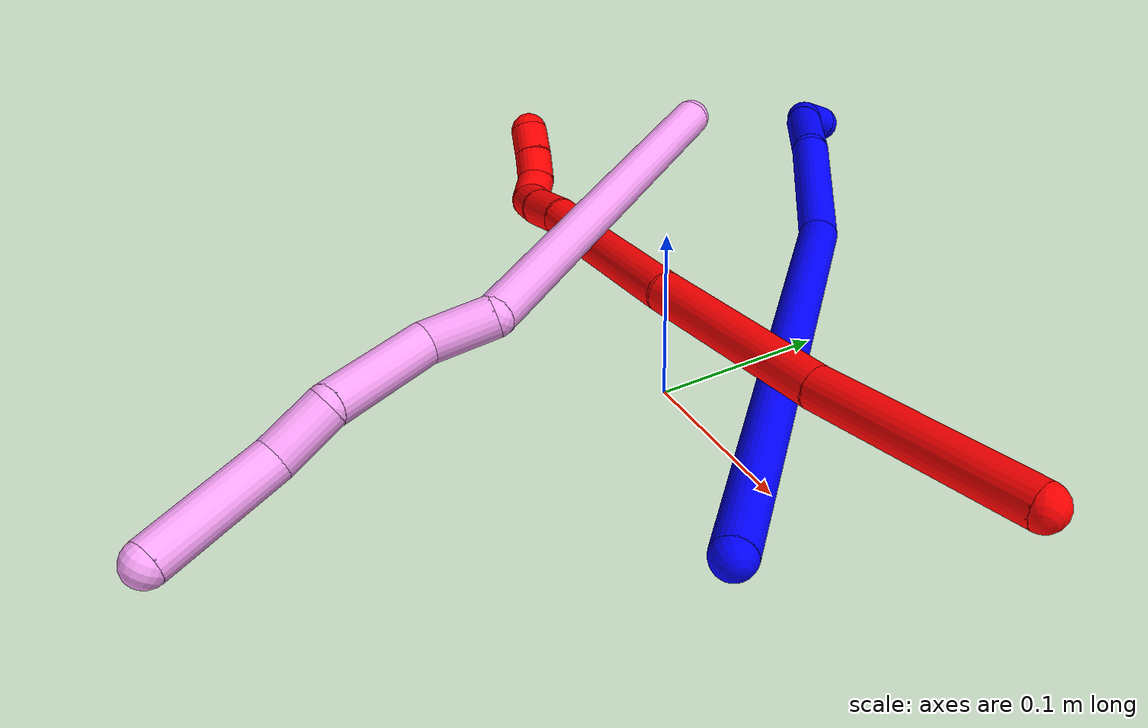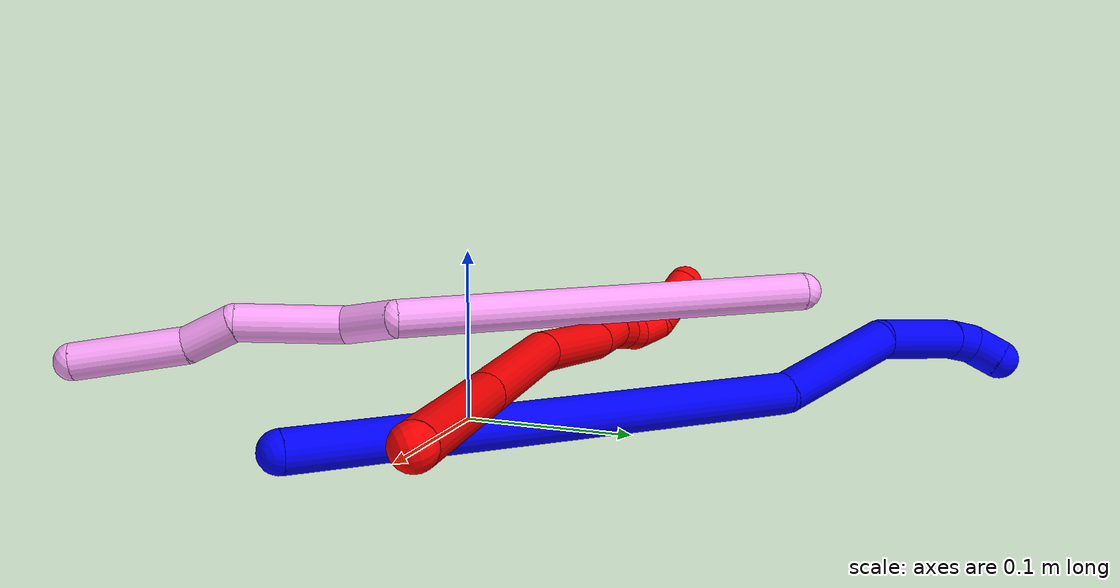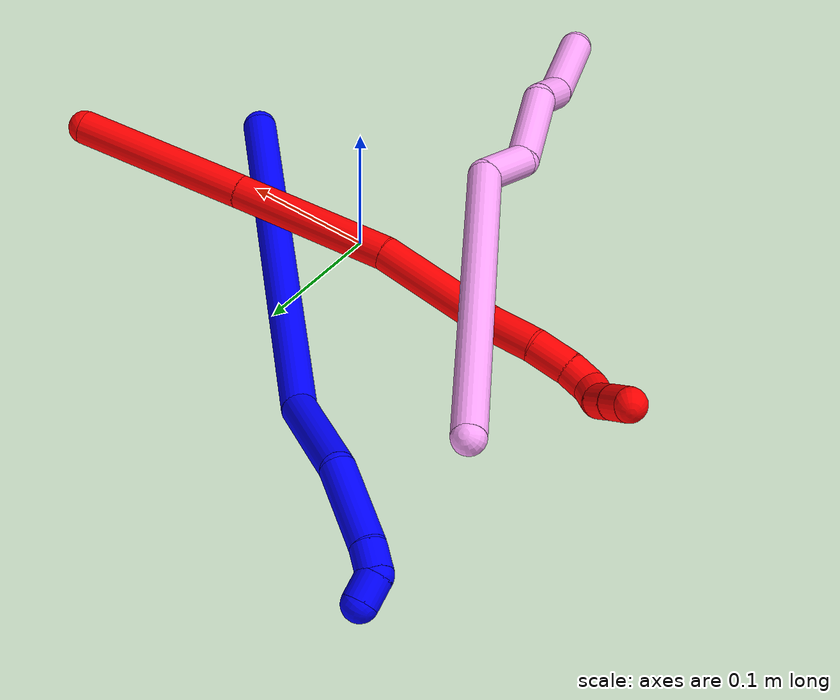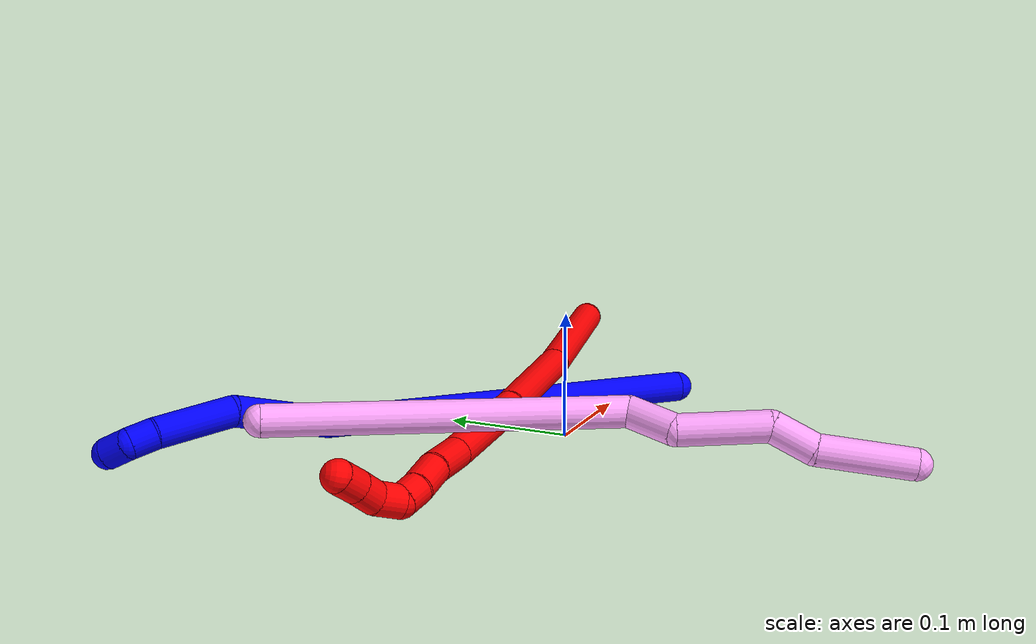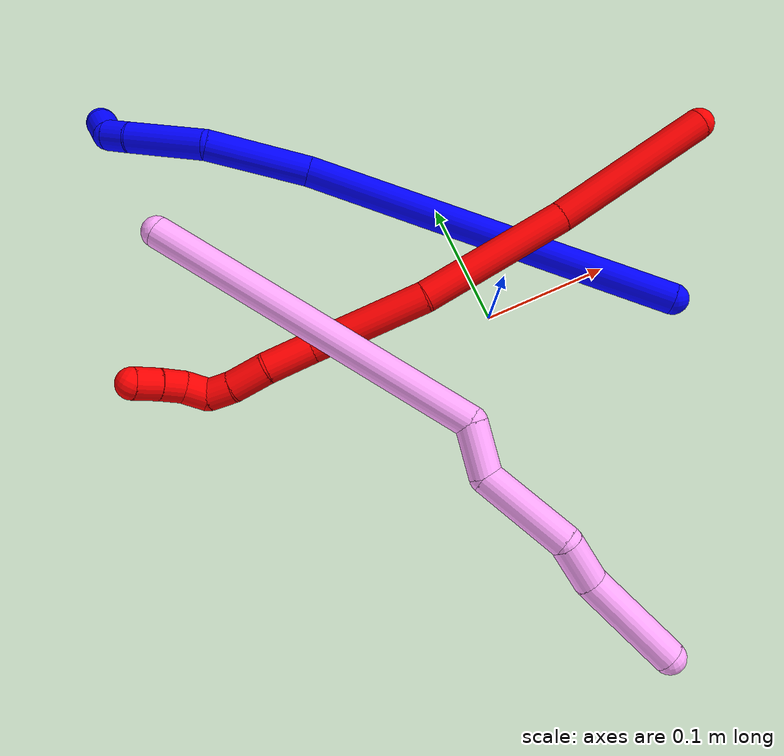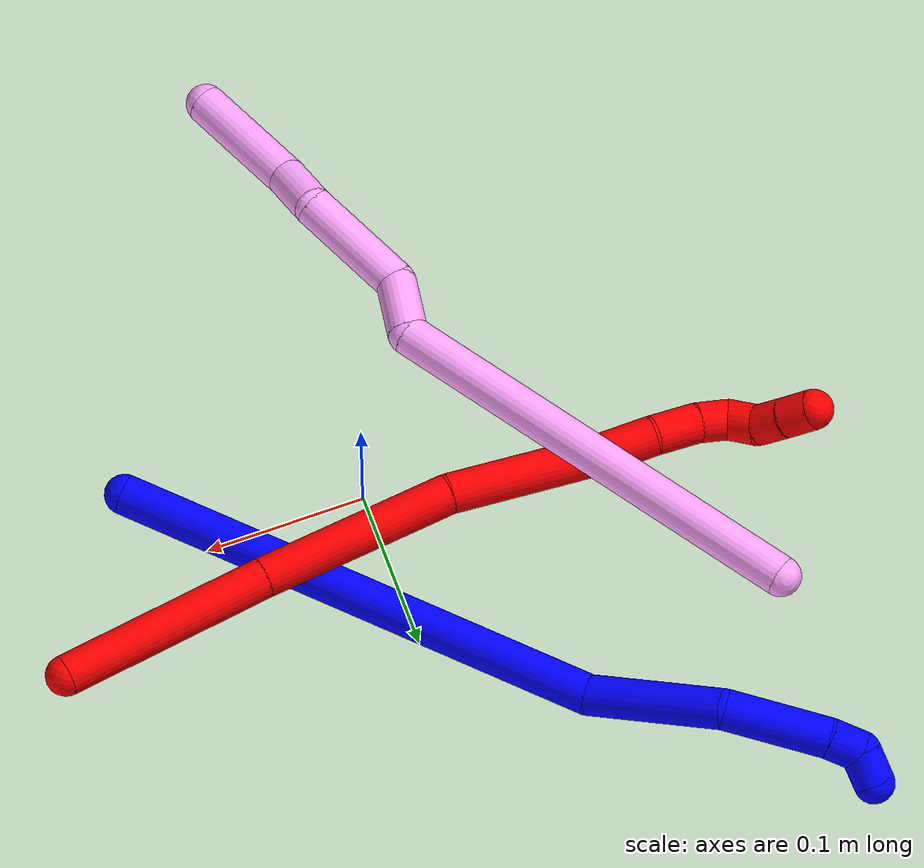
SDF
<sdf version="1.7">
 <world name="default">
  <model name="photoneo_s_sensor">
   <static>1</static>
   <pose>0 0 2 1.57079 1.57079 3.14159</pose>
   <link name="link">
    <inertial><mass>0.1</mass></inertial>
    <sensor name="sensor" type="depth">
     <update_rate>30</update_rate>
     <camera>
      <horizontal_fov>1.22</horizontal_fov>
      <image><width>1920</width><height>1200</height><format>B8G8R8</format></image>
      <clip><near>0.1</near><far>4</far></clip>
      <depth_camera><output>points</output></depth_camera>
     </camera>
     <plugin name="camera_plugin" filename="libgazebo_ros_depth_camera.so">
      <baseline>0.2</baseline>
      <alwaysOn>1</alwaysOn>
      <updateRate>0.0</updateRate>
      <cameraName>camera_ir</cameraName>
      <imageTopicName>/camera/color/image_raw</imageTopicName>
      <cameraInfoTopicName>/camera/color/camera_info</cameraInfoTopicName>
      <depthImageTopicName>/camera/depth/image_raw</depthImageTopicName>
      <depthImageCameraInfoTopicName>/camera/depth/camera_info</depthImageCameraInfoTopicName>
      <pointCloudTopicName>/camera/depth/points</pointCloudTopicName>
      <frameName>fr_optical</frameName>
      <pointCloudCutoff>0.1</pointCloudCutoff>
      <pointCloudCutoffMax>2.0</pointCloudCutoffMax>
      <distortionK1>0</distortionK1>
      <distortionK2>0</distortionK2>
      <distortionK3>0</distortionK3>
      <distortionT1>0</distortionT1>
      <distortionT2>0</distortionT2>
      <CxPrime>0</CxPrime>
      <Cx>0</Cx>
      <Cy>0</Cy>
      <focalLength>0</focalLength>
      <hackBaseline>0</hackBaseline>
     </plugin>
    </sensor>
   </link>
  </model>
  <model name="bin">
   <static>1</static>
   <link name="bottom">
    <collision name="collision-bottom">
     <pose>0 0 -0.01 0 -0 0</pose>
     <geometry><box><size>0.8 0.6 0.02</size></box></geometry>
     <surface>
      <friction><ode><mu>100</mu><mu2>100</mu2></ode></friction>
      <contact><collide_bitmask>65535</collide_bitmask></contact>
     </surface>
    </collision>
   </link>
   <link name="west_wall">
    <collision name="collision-west_wall">
     <pose>-0.41 0 0.1 0 -0 0</pose>
     <geometry><box><size>0.02 0.6 0.2</size></box></geometry>
     <surface>
      <friction><ode><mu>100</mu><mu2>100</mu2></ode></friction>
      <contact><collide_bitmask>65535</collide_bitmask></contact>
     </surface>
    </collision>
   </link>
   <link name="east_wall">
    <collision name="collision-east_wall">
     <pose>0.41 0 0.1 0 -0 0</pose>
     <geometry><box><size>0.02 0.6 0.2</size></box></geometry>
     <surface>
      <friction><ode><mu>100</mu><mu2>100</mu2></ode></friction>
      <contact><collide_bitmask>65535</collide_bitmask></contact>
     </surface>
    </collision>
   </link>
   <link name="south_wall">
    <collision name="collision-south_wall">
     <pose>0 -0.31 0.1 0 -0 0</pose>
     <geometry><box><size>0.8 0.02 0.2</size></box></geometry>
     <surface>
      <friction><ode><mu>100</mu><mu2>100</mu2></ode></friction>
      <contact><collide_bitmask>65535</collide_bitmask></contact>
     </surface>
    </collision>
   </link>
   <link name="north_wall">
    <collision name="collision-north_wall">
     <pose>0 0.31 0.1 0 -0 0</pose>
     <geometry><box><size>0.8 0.02 0.2</size></box></geometry>
     <surface>
      <friction><ode><mu>100</mu><mu2>100</mu2></ode></friction>
      <contact><collide_bitmask>65535</collide_bitmask></contact>
     </surface>
    </collision>
   </link>
  </model>
  <model name="1">
   <static>0</static>
   <link name="1">
    <collision name="collision-cylinder-e_1_1_4">
     <pose>-0.056234 0.048711 0.135348 -0.345466 -0.372665 0.065759</pose>
     <geometry><cylinder><radius>0.0125</radius><length>0.308895</length></cylinder></geometry>
     <surface>
      <friction><ode><mu>1.16</mu><mu2>1.16</mu2><slip1>0</slip1><slip2>0</slip2></ode></friction>
      <contact><ode><kp>1e+06</kp><kd>1</kd><max_vel>0</max_vel><min_depth>0.001</min_depth></ode></contact>
     </surface>
    </collision>
    <visual name="visual-cylinder-e_1_1_4">
     <pose>-0.056234 0.048711 0.135348 -0.345466 -0.372665 0.065759</pose>
     <geometry><cylinder><radius>0.0125</radius><length>0.308895</length></cylinder></geometry>
     <material><ambient>0 0 1 1</ambient></material>
    </visual>
    <collision name="collision-cylinder-e_2_4_5">
     <pose>-0.113896 0.113341 0.310005 -0.384758 -0.033646 0.006554</pose>
     <geometry><cylinder><radius>0.0125</radius><length>0.084868</length></cylinder></geometry>
     <surface>
      <friction><ode><mu>1.16</mu><mu2>1.16</mu2><slip1>0</slip1><slip2>0</slip2></ode></friction>
      <contact><ode><kp>1e+06</kp><kd>1</kd><max_vel>0</max_vel><min_depth>0.001</min_depth></ode></contact>
     </surface>
    </collision>
    <visual name="visual-cylinder-e_2_4_5">
     <pose>-0.113896 0.113341 0.310005 -0.384758 -0.033646 0.006554</pose>
     <geometry><cylinder><radius>0.0125</radius><length>0.084868</length></cylinder></geometry>
     <material><ambient>0 0 1 1</ambient></material>
    </visual>
    <collision name="collision-cylinder-e_3_5_6">
     <pose>-0.125329 0.132647 0.379857 -0.110473 -0.314776 0.017549</pose>
     <geometry><cylinder><radius>0.0125</radius><length>0.064636</length></cylinder></geometry>
     <surface>
      <friction><ode><mu>1.16</mu><mu2>1.16</mu2><slip1>0</slip1><slip2>0</slip2></ode></friction>
      <contact><ode><kp>1e+06</kp><kd>1</kd><max_vel>0</max_vel><min_depth>0.001</min_depth></ode></contact>
     </surface>
    </collision>
    <visual name="visual-cylinder-e_3_5_6">
     <pose>-0.125329 0.132647 0.379857 -0.110473 -0.314776 0.017549</pose>
     <geometry><cylinder><radius>0.0125</radius><length>0.064636</length></cylinder></geometry>
     <material><ambient>0 0 1 1</ambient></material>
    </visual>
    <collision name="collision-cylinder-e_4_6_7">
     <pose>-0.139977 0.136561 0.419648 -0.056815 -0.464591 0.013444</pose>
     <geometry><cylinder><radius>0.0125</radius><length>0.020723</length></cylinder></geometry>
     <surface>
      <friction><ode><mu>1.16</mu><mu2>1.16</mu2><slip1>0</slip1><slip2>0</slip2></ode></friction>
      <contact><ode><kp>1e+06</kp><kd>1</kd><max_vel>0</max_vel><min_depth>0.001</min_depth></ode></contact>
     </surface>
    </collision>
    <visual name="visual-cylinder-e_4_6_7">
     <pose>-0.139977 0.136561 0.419648 -0.056815 -0.464591 0.013444</pose>
     <geometry><cylinder><radius>0.0125</radius><length>0.020723</length></cylinder></geometry>
     <material><ambient>0 0 1 1</ambient></material>
    </visual>
    <collision name="collision-cylinder-e_5_7_2">
     <pose>-0.154194 0.13921 0.432473 -0.535761 -1.1609 0.356196</pose>
     <geometry><cylinder><radius>0.0125</radius><length>0.020878</length></cylinder></geometry>
     <surface>
      <friction><ode><mu>1.16</mu><mu2>1.16</mu2><slip1>0</slip1><slip2>0</slip2></ode></friction>
      <contact><ode><kp>1e+06</kp><kd>1</kd><max_vel>0</max_vel><min_depth>0.001</min_depth></ode></contact>
     </surface>
    </collision>
    <visual name="visual-cylinder-e_5_7_2">
     <pose>-0.154194 0.13921 0.432473 -0.535761 -1.1609 0.356196</pose>
     <geometry><cylinder><radius>0.0125</radius><length>0.020878</length></cylinder></geometry>
     <material><ambient>0 0 1 1</ambient></material>
    </visual>
    <collision name="collision-sphere-2">
     <pose>-0.163768 0.141334 0.43605 0 -0 0</pose>
     <geometry><sphere><radius>0.0125</radius></sphere></geometry>
     <surface>
      <friction><ode><mu>1.16</mu><mu2>1.16</mu2><slip1>0</slip1><slip2>0</slip2></ode></friction>
      <contact><ode><kp>1e+06</kp><kd>1</kd><max_vel>0</max_vel><min_depth>0.001</min_depth></ode></contact>
     </surface>
    </collision>
    <visual name="visual-sphere-2">
     <pose>-0.163768 0.141334 0.43605 0 -0 0</pose>
     <geometry><sphere><radius>0.0125</radius></sphere></geometry>
     <material><ambient>0 0 1 1</ambient></material>
    </visual>
    <collision name="collision-sphere-7">
     <pose>-0.14462 0.137087 0.428896 0 -0 0</pose>
     <geometry><sphere><radius>0.0125</radius></sphere></geometry>
     <surface>
      <friction><ode><mu>1.16</mu><mu2>1.16</mu2><slip1>0</slip1><slip2>0</slip2></ode></friction>
      <contact><ode><kp>1e+06</kp><kd>1</kd><max_vel>0</max_vel><min_depth>0.001</min_depth></ode></contact>
     </surface>
    </collision>
    <visual name="visual-sphere-7">
     <pose>-0.14462 0.137087 0.428896 0 -0 0</pose>
     <geometry><sphere><radius>0.0125</radius></sphere></geometry>
     <material><ambient>0 0 1 1</ambient></material>
    </visual>
    <collision name="collision-sphere-6">
     <pose>-0.135335 0.136035 0.410399 0 -0 0</pose>
     <geometry><sphere><radius>0.0125</radius></sphere></geometry>
     <surface>
      <friction><ode><mu>1.16</mu><mu2>1.16</mu2><slip1>0</slip1><slip2>0</slip2></ode></friction>
      <contact><ode><kp>1e+06</kp><kd>1</kd><max_vel>0</max_vel><min_depth>0.001</min_depth></ode></contact>
     </surface>
    </collision>
    <visual name="visual-sphere-6">
     <pose>-0.135335 0.136035 0.410399 0 -0 0</pose>
     <geometry><sphere><radius>0.0125</radius></sphere></geometry>
     <material><ambient>0 0 1 1</ambient></material>
    </visual>
    <collision name="collision-sphere-5">
     <pose>-0.115323 0.129259 0.349314 0 -0 0</pose>
     <geometry><sphere><radius>0.0125</radius></sphere></geometry>
     <surface>
      <friction><ode><mu>1.16</mu><mu2>1.16</mu2><slip1>0</slip1><slip2>0</slip2></ode></friction>
      <contact><ode><kp>1e+06</kp><kd>1</kd><max_vel>0</max_vel><min_depth>0.001</min_depth></ode></contact>
     </surface>
    </collision>
    <visual name="visual-sphere-5">
     <pose>-0.115323 0.129259 0.349314 0 -0 0</pose>
     <geometry><sphere><radius>0.0125</radius></sphere></geometry>
     <material><ambient>0 0 1 1</ambient></material>
    </visual>
    <collision name="collision-sphere-1">
     <geometry><sphere><radius>0.0125</radius></sphere></geometry>
     <surface>
      <friction><ode><mu>1.16</mu><mu2>1.16</mu2><slip1>0</slip1><slip2>0</slip2></ode></friction>
      <contact><ode><kp>1e+06</kp><kd>1</kd><max_vel>0</max_vel><min_depth>0.001</min_depth></ode></contact>
     </surface>
    </collision>
    <visual name="visual-sphere-1">
     <geometry><sphere><radius>0.0125</radius></sphere></geometry>
     <material><ambient>0 0 1 1</ambient></material>
    </visual>
    <collision name="collision-sphere-4">
     <pose>-0.112468 0.097423 0.270695 0 -0 0</pose>
     <geometry><sphere><radius>0.0125</radius></sphere></geometry>
     <surface>
      <friction><ode><mu>1.16</mu><mu2>1.16</mu2><slip1>0</slip1><slip2>0</slip2></ode></friction>
      <contact><ode><kp>1e+06</kp><kd>1</kd><max_vel>0</max_vel><min_depth>0.001</min_depth></ode></contact>
     </surface>
    </collision>
    <visual name="visual-sphere-4">
     <pose>-0.112468 0.097423 0.270695 0 -0 0</pose>
     <geometry><sphere><radius>0.0125</radius></sphere></geometry>
     <material><ambient>0 0 1 1</ambient></material>
    </visual>
    <inertial>
     <pose>-0.082515 0.077952 0.220791 0 -0 0</pose>
     <mass>0.5</mass>
     <inertia>
      <ixx>0.002513</ixx>
      <ixy>0</ixy>
      <ixz>0</ixz>
      <iyy>0.002579</iyy>
      <iyz>0</iyz>
      <izz>0.000143</izz>
     </inertia>
    </inertial>
   </link>
   <pose>0.136359 -0.047686 0.011483 1.55686 -0.72823 -1.84409</pose>
  </model>
  <model name="2">
   <static>0</static>
   <link name="2">
    <collision name="collision-cylinder-e_1_1_4">
     <pose>-0.058885 -0.009412 -0.030707 2.84419 -1.07148 -2.64722</pose>
     <geometry><cylinder><radius>0.0125</radius><length>0.134149</length></cylinder></geometry>
     <surface>
      <friction><ode><mu>1.16</mu><mu2>1.16</mu2><slip1>0</slip1><slip2>0</slip2></ode></friction>
      <contact><ode><kp>1e+06</kp><kd>1</kd><max_vel>0</max_vel><min_depth>0.001</min_depth></ode></contact>
     </surface>
    </collision>
    <visual name="visual-cylinder-e_1_1_4">
     <pose>-0.058885 -0.009412 -0.030707 2.84419 -1.07148 -2.64722</pose>
     <geometry><cylinder><radius>0.0125</radius><length>0.134149</length></cylinder></geometry>
     <material><ambient>1 0 0 1</ambient></material>
    </visual>
    <collision name="collision-cylinder-e_2_4_5">
     <pose>-0.170441 -0.02563 -0.09318 2.9305 -1.01813 -2.76642</pose>
     <geometry><cylinder><radius>0.0125</radius><length>0.123768</length></cylinder></geometry>
     <surface>
      <friction><ode><mu>1.16</mu><mu2>1.16</mu2><slip1>0</slip1><slip2>0</slip2></ode></friction>
      <contact><ode><kp>1e+06</kp><kd>1</kd><max_vel>0</max_vel><min_depth>0.001</min_depth></ode></contact>
     </surface>
    </collision>
    <visual name="visual-cylinder-e_2_4_5">
     <pose>-0.170441 -0.02563 -0.09318 2.9305 -1.01813 -2.76642</pose>
     <geometry><cylinder><radius>0.0125</radius><length>0.123768</length></cylinder></geometry>
     <material><ambient>1 0 0 1</ambient></material>
    </visual>
    <collision name="collision-cylinder-e_3_5_6">
     <pose>-0.259402 -0.043561 -0.153088 2.76518 -0.875729 -2.36885</pose>
     <geometry><cylinder><radius>0.0125</radius><length>0.094504</length></cylinder></geometry>
     <surface>
      <friction><ode><mu>1.16</mu><mu2>1.16</mu2><slip1>0</slip1><slip2>0</slip2></ode></friction>
      <contact><ode><kp>1e+06</kp><kd>1</kd><max_vel>0</max_vel><min_depth>0.001</min_depth></ode></contact>
     </surface>
    </collision>
    <visual name="visual-cylinder-e_3_5_6">
     <pose>-0.259402 -0.043561 -0.153088 2.76518 -0.875729 -2.36885</pose>
     <geometry><cylinder><radius>0.0125</radius><length>0.094504</length></cylinder></geometry>
     <material><ambient>1 0 0 1</ambient></material>
    </visual>
    <collision name="collision-cylinder-e_4_6_7">
     <pose>-0.310656 -0.056954 -0.192487 2.94265 -0.916296 -2.74223</pose>
     <geometry><cylinder><radius>0.0125</radius><length>0.037723</length></cylinder></geometry>
     <surface>
      <friction><ode><mu>1.16</mu><mu2>1.16</mu2><slip1>0</slip1><slip2>0</slip2></ode></friction>
      <contact><ode><kp>1e+06</kp><kd>1</kd><max_vel>0</max_vel><min_depth>0.001</min_depth></ode></contact>
     </surface>
    </collision>
    <visual name="visual-cylinder-e_4_6_7">
     <pose>-0.310656 -0.056954 -0.192487 2.94265 -0.916296 -2.74223</pose>
     <geometry><cylinder><radius>0.0125</radius><length>0.037723</length></cylinder></geometry>
     <material><ambient>1 0 0 1</ambient></material>
    </visual>
    <collision name="collision-cylinder-e_5_7_8">
     <pose>-0.337462 -0.063564 -0.211406 2.62625 -0.931313 -2.17561</pose>
     <geometry><cylinder><radius>0.0125</radius><length>0.029516</length></cylinder></geometry>
     <surface>
      <friction><ode><mu>1.16</mu><mu2>1.16</mu2><slip1>0</slip1><slip2>0</slip2></ode></friction>
      <contact><ode><kp>1e+06</kp><kd>1</kd><max_vel>0</max_vel><min_depth>0.001</min_depth></ode></contact>
     </surface>
    </collision>
    <visual name="visual-cylinder-e_5_7_8">
     <pose>-0.337462 -0.063564 -0.211406 2.62625 -0.931313 -2.17561</pose>
     <geometry><cylinder><radius>0.0125</radius><length>0.029516</length></cylinder></geometry>
     <material><ambient>1 0 0 1</ambient></material>
    </visual>
    <collision name="collision-cylinder-e_6_8_9">
     <pose>-0.356172 -0.071293 -0.225538 2.65898 -0.754867 -2.03047</pose>
     <geometry><cylinder><radius>0.0125</radius><length>0.02005</length></cylinder></geometry>
     <surface>
      <friction><ode><mu>1.16</mu><mu2>1.16</mu2><slip1>0</slip1><slip2>0</slip2></ode></friction>
      <contact><ode><kp>1e+06</kp><kd>1</kd><max_vel>0</max_vel><min_depth>0.001</min_depth></ode></contact>
     </surface>
    </collision>
    <visual name="visual-cylinder-e_6_8_9">
     <pose>-0.356172 -0.071293 -0.225538 2.65898 -0.754867 -2.03047</pose>
     <geometry><cylinder><radius>0.0125</radius><length>0.02005</length></cylinder></geometry>
     <material><ambient>1 0 0 1</ambient></material>
    </visual>
    <collision name="collision-cylinder-e_7_9_10">
     <pose>-0.364898 -0.074189 -0.241862 -3.09159 -0.185948 2.61756</pose>
     <geometry><cylinder><radius>0.0125</radius><length>0.020085</length></cylinder></geometry>
     <surface>
      <friction><ode><mu>1.16</mu><mu2>1.16</mu2><slip1>0</slip1><slip2>0</slip2></ode></friction>
      <contact><ode><kp>1e+06</kp><kd>1</kd><max_vel>0</max_vel><min_depth>0.001</min_depth></ode></contact>
     </surface>
    </collision>
    <visual name="visual-cylinder-e_7_9_10">
     <pose>-0.364898 -0.074189 -0.241862 -3.09159 -0.185948 2.61756</pose>
     <geometry><cylinder><radius>0.0125</radius><length>0.020085</length></cylinder></geometry>
     <material><ambient>1 0 0 1</ambient></material>
    </visual>
    <collision name="collision-cylinder-e_8_10_11">
     <pose>-0.370361 -0.069299 -0.260005 -2.65382 -0.367067 1.28182</pose>
     <geometry><cylinder><radius>0.0125</radius><length>0.020098</length></cylinder></geometry>
     <surface>
      <friction><ode><mu>1.16</mu><mu2>1.16</mu2><slip1>0</slip1><slip2>0</slip2></ode></friction>
      <contact><ode><kp>1e+06</kp><kd>1</kd><max_vel>0</max_vel><min_depth>0.001</min_depth></ode></contact>
     </surface>
    </collision>
    <visual name="visual-cylinder-e_8_10_11">
     <pose>-0.370361 -0.069299 -0.260005 -2.65382 -0.367067 1.28182</pose>
     <geometry><cylinder><radius>0.0125</radius><length>0.020098</length></cylinder></geometry>
     <material><ambient>1 0 0 1</ambient></material>
    </visual>
    <collision name="collision-cylinder-e_9_11_2">
     <pose>-0.378185 -0.060889 -0.276487 -2.68608 -0.432896 1.51817</pose>
     <geometry><cylinder><radius>0.0125</radius><length>0.020108</length></cylinder></geometry>
     <surface>
      <friction><ode><mu>1.16</mu><mu2>1.16</mu2><slip1>0</slip1><slip2>0</slip2></ode></friction>
      <contact><ode><kp>1e+06</kp><kd>1</kd><max_vel>0</max_vel><min_depth>0.001</min_depth></ode></contact>
     </surface>
    </collision>
    <visual name="visual-cylinder-e_9_11_2">
     <pose>-0.378185 -0.060889 -0.276487 -2.68608 -0.432896 1.51817</pose>
     <geometry><cylinder><radius>0.0125</radius><length>0.020108</length></cylinder></geometry>
     <material><ambient>1 0 0 1</ambient></material>
    </visual>
    <collision name="collision-sphere-2">
     <pose>-0.382403 -0.056874 -0.284683 0 -0 0</pose>
     <geometry><sphere><radius>0.0125</radius></sphere></geometry>
     <surface>
      <friction><ode><mu>1.16</mu><mu2>1.16</mu2><slip1>0</slip1><slip2>0</slip2></ode></friction>
      <contact><ode><kp>1e+06</kp><kd>1</kd><max_vel>0</max_vel><min_depth>0.001</min_depth></ode></contact>
     </surface>
    </collision>
    <visual name="visual-sphere-2">
     <pose>-0.382403 -0.056874 -0.284683 0 -0 0</pose>
     <geometry><sphere><radius>0.0125</radius></sphere></geometry>
     <material><ambient>1 0 0 1</ambient></material>
    </visual>
    <collision name="collision-sphere-11">
     <pose>-0.373968 -0.064903 -0.268291 0 -0 0</pose>
     <geometry><sphere><radius>0.0125</radius></sphere></geometry>
     <surface>
      <friction><ode><mu>1.16</mu><mu2>1.16</mu2><slip1>0</slip1><slip2>0</slip2></ode></friction>
      <contact><ode><kp>1e+06</kp><kd>1</kd><max_vel>0</max_vel><min_depth>0.001</min_depth></ode></contact>
     </surface>
    </collision>
    <visual name="visual-sphere-11">
     <pose>-0.373968 -0.064903 -0.268291 0 -0 0</pose>
     <geometry><sphere><radius>0.0125</radius></sphere></geometry>
     <material><ambient>1 0 0 1</ambient></material>
    </visual>
    <collision name="collision-sphere-10">
     <pose>-0.366755 -0.073695 -0.25172 0 -0 0</pose>
     <geometry><sphere><radius>0.0125</radius></sphere></geometry>
     <surface>
      <friction><ode><mu>1.16</mu><mu2>1.16</mu2><slip1>0</slip1><slip2>0</slip2></ode></friction>
      <contact><ode><kp>1e+06</kp><kd>1</kd><max_vel>0</max_vel><min_depth>0.001</min_depth></ode></contact>
     </surface>
    </collision>
    <visual name="visual-sphere-10">
     <pose>-0.366755 -0.073695 -0.25172 0 -0 0</pose>
     <geometry><sphere><radius>0.0125</radius></sphere></geometry>
     <material><ambient>1 0 0 1</ambient></material>
    </visual>
    <collision name="collision-sphere-9">
     <pose>-0.363041 -0.074682 -0.232005 0 -0 0</pose>
     <geometry><sphere><radius>0.0125</radius></sphere></geometry>
     <surface>
      <friction><ode><mu>1.16</mu><mu2>1.16</mu2><slip1>0</slip1><slip2>0</slip2></ode></friction>
      <contact><ode><kp>1e+06</kp><kd>1</kd><max_vel>0</max_vel><min_depth>0.001</min_depth></ode></contact>
     </surface>
    </collision>
    <visual name="visual-sphere-9">
     <pose>-0.363041 -0.074682 -0.232005 0 -0 0</pose>
     <geometry><sphere><radius>0.0125</radius></sphere></geometry>
     <material><ambient>1 0 0 1</ambient></material>
    </visual>
    <collision name="collision-sphere-4">
     <pose>-0.11777 -0.018823 -0.061414 0 -0 0</pose>
     <geometry><sphere><radius>0.0125</radius></sphere></geometry>
     <surface>
      <friction><ode><mu>1.16</mu><mu2>1.16</mu2><slip1>0</slip1><slip2>0</slip2></ode></friction>
      <contact><ode><kp>1e+06</kp><kd>1</kd><max_vel>0</max_vel><min_depth>0.001</min_depth></ode></contact>
     </surface>
    </collision>
    <visual name="visual-sphere-4">
     <pose>-0.11777 -0.018823 -0.061414 0 -0 0</pose>
     <geometry><sphere><radius>0.0125</radius></sphere></geometry>
     <material><ambient>1 0 0 1</ambient></material>
    </visual>
    <collision name="collision-sphere-1">
     <geometry><sphere><radius>0.0125</radius></sphere></geometry>
     <surface>
      <friction><ode><mu>1.16</mu><mu2>1.16</mu2><slip1>0</slip1><slip2>0</slip2></ode></friction>
      <contact><ode><kp>1e+06</kp><kd>1</kd><max_vel>0</max_vel><min_depth>0.001</min_depth></ode></contact>
     </surface>
    </collision>
    <visual name="visual-sphere-1">
     <geometry><sphere><radius>0.0125</radius></sphere></geometry>
     <material><ambient>1 0 0 1</ambient></material>
    </visual>
    <collision name="collision-sphere-8">
     <pose>-0.349303 -0.067904 -0.21907 0 -0 0</pose>
     <geometry><sphere><radius>0.0125</radius></sphere></geometry>
     <surface>
      <friction><ode><mu>1.16</mu><mu2>1.16</mu2><slip1>0</slip1><slip2>0</slip2></ode></friction>
      <contact><ode><kp>1e+06</kp><kd>1</kd><max_vel>0</max_vel><min_depth>0.001</min_depth></ode></contact>
     </surface>
    </collision>
    <visual name="visual-sphere-8">
     <pose>-0.349303 -0.067904 -0.21907 0 -0 0</pose>
     <geometry><sphere><radius>0.0125</radius></sphere></geometry>
     <material><ambient>1 0 0 1</ambient></material>
    </visual>
    <collision name="collision-sphere-5">
     <pose>-0.223112 -0.032437 -0.124945 0 -0 0</pose>
     <geometry><sphere><radius>0.0125</radius></sphere></geometry>
     <surface>
      <friction><ode><mu>1.16</mu><mu2>1.16</mu2><slip1>0</slip1><slip2>0</slip2></ode></friction>
      <contact><ode><kp>1e+06</kp><kd>1</kd><max_vel>0</max_vel><min_depth>0.001</min_depth></ode></contact>
     </surface>
    </collision>
    <visual name="visual-sphere-5">
     <pose>-0.223112 -0.032437 -0.124945 0 -0 0</pose>
     <geometry><sphere><radius>0.0125</radius></sphere></geometry>
     <material><ambient>1 0 0 1</ambient></material>
    </visual>
    <collision name="collision-sphere-6">
     <pose>-0.295692 -0.054685 -0.181232 0 -0 0</pose>
     <geometry><sphere><radius>0.0125</radius></sphere></geometry>
     <surface>
      <friction><ode><mu>1.16</mu><mu2>1.16</mu2><slip1>0</slip1><slip2>0</slip2></ode></friction>
      <contact><ode><kp>1e+06</kp><kd>1</kd><max_vel>0</max_vel><min_depth>0.001</min_depth></ode></contact>
     </surface>
    </collision>
    <visual name="visual-sphere-6">
     <pose>-0.295692 -0.054685 -0.181232 0 -0 0</pose>
     <geometry><sphere><radius>0.0125</radius></sphere></geometry>
     <material><ambient>1 0 0 1</ambient></material>
    </visual>
    <collision name="collision-sphere-7">
     <pose>-0.32562 -0.059223 -0.203743 0 -0 0</pose>
     <geometry><sphere><radius>0.0125</radius></sphere></geometry>
     <surface>
      <friction><ode><mu>1.16</mu><mu2>1.16</mu2><slip1>0</slip1><slip2>0</slip2></ode></friction>
      <contact><ode><kp>1e+06</kp><kd>1</kd><max_vel>0</max_vel><min_depth>0.001</min_depth></ode></contact>
     </surface>
    </collision>
    <visual name="visual-sphere-7">
     <pose>-0.32562 -0.059223 -0.203743 0 -0 0</pose>
     <geometry><sphere><radius>0.0125</radius></sphere></geometry>
     <material><ambient>1 0 0 1</ambient></material>
    </visual>
    <inertial>
     <pose>-0.209413 -0.036225 -0.127571 0 -0 0</pose>
     <mass>0.5</mass>
     <inertia>
      <ixx>-0.000348</ixx>
      <ixy>0</ixy>
      <ixz>0</ixz>
      <iyy>0.000316</iyy>
      <iyz>0</iyz>
      <izz>0.000429</izz>
     </inertia>
    </inertial>
   </link>
   <pose>0.209856 0.065719 0.045869 1.82352 -0.055391 0.673165</pose>
  </model>
  <model name="4">
   <static>0</static>
   <link name="4">
    <collision name="collision-cylinder-e_1_1_4">
     <pose>0.013494 -0.112571 0.078038 0.964625 0.098198 0.051442</pose>
     <geometry><cylinder><radius>0.0125</radius><length>0.275277</length></cylinder></geometry>
     <surface>
      <friction><ode><mu>1.16</mu><mu2>1.16</mu2><slip1>0</slip1><slip2>0</slip2></ode></friction>
      <contact><ode><kp>1e+06</kp><kd>1</kd><max_vel>0</max_vel><min_depth>0.001</min_depth></ode></contact>
     </surface>
    </collision>
    <visual name="visual-cylinder-e_1_1_4">
     <pose>0.013494 -0.112571 0.078038 0.964625 0.098198 0.051442</pose>
     <geometry><cylinder><radius>0.0125</radius><length>0.275277</length></cylinder></geometry>
     <material><ambient>1 0.65098 0.996078 1</ambient></material>
    </visual>
    <collision name="collision-cylinder-e_2_4_5">
     <pose>0.039606 -0.231407 0.17072 0.404263 0.669991 0.142438</pose>
     <geometry><cylinder><radius>0.0125</radius><length>0.040639</length></cylinder></geometry>
     <surface>
      <friction><ode><mu>1.16</mu><mu2>1.16</mu2><slip1>0</slip1><slip2>0</slip2></ode></friction>
      <contact><ode><kp>1e+06</kp><kd>1</kd><max_vel>0</max_vel><min_depth>0.001</min_depth></ode></contact>
     </surface>
    </collision>
    <visual name="visual-cylinder-e_2_4_5">
     <pose>0.039606 -0.231407 0.17072 0.404263 0.669991 0.142438</pose>
     <geometry><cylinder><radius>0.0125</radius><length>0.040639</length></cylinder></geometry>
     <material><ambient>1 0.65098 0.996078 1</ambient></material>
    </visual>
    <collision name="collision-cylinder-e_3_5_6">
     <pose>0.061351 -0.26613 0.204997 0.966848 0.2581 0.136042</pose>
     <geometry><cylinder><radius>0.0125</radius><length>0.071516</length></cylinder></geometry>
     <surface>
      <friction><ode><mu>1.16</mu><mu2>1.16</mu2><slip1>0</slip1><slip2>0</slip2></ode></friction>
      <contact><ode><kp>1e+06</kp><kd>1</kd><max_vel>0</max_vel><min_depth>0.001</min_depth></ode></contact>
     </surface>
    </collision>
    <visual name="visual-cylinder-e_3_5_6">
     <pose>0.061351 -0.26613 0.204997 0.966848 0.2581 0.136042</pose>
     <geometry><cylinder><radius>0.0125</radius><length>0.071516</length></cylinder></geometry>
     <material><ambient>1 0.65098 0.996078 1</ambient></material>
    </visual>
    <collision name="collision-cylinder-e_4_6_7">
     <pose>0.074917 -0.301443 0.240855 0.399793 0.246848 0.050257</pose>
     <geometry><cylinder><radius>0.0125</radius><length>0.036326</length></cylinder></geometry>
     <surface>
      <friction><ode><mu>1.16</mu><mu2>1.16</mu2><slip1>0</slip1><slip2>0</slip2></ode></friction>
      <contact><ode><kp>1e+06</kp><kd>1</kd><max_vel>0</max_vel><min_depth>0.001</min_depth></ode></contact>
     </surface>
    </collision>
    <visual name="visual-cylinder-e_4_6_7">
     <pose>0.074917 -0.301443 0.240855 0.399793 0.246848 0.050257</pose>
     <geometry><cylinder><radius>0.0125</radius><length>0.036326</length></cylinder></geometry>
     <material><ambient>1 0.65098 0.996078 1</ambient></material>
    </visual>
    <collision name="collision-cylinder-e_5_7_2">
     <pose>0.088327 -0.334227 0.283543 0.7752 0.237593 0.09738</pose>
     <geometry><cylinder><radius>0.0125</radius><length>0.076242</length></cylinder></geometry>
     <surface>
      <friction><ode><mu>1.16</mu><mu2>1.16</mu2><slip1>0</slip1><slip2>0</slip2></ode></friction>
      <contact><ode><kp>1e+06</kp><kd>1</kd><max_vel>0</max_vel><min_depth>0.001</min_depth></ode></contact>
     </surface>
    </collision>
    <visual name="visual-cylinder-e_5_7_2">
     <pose>0.088327 -0.334227 0.283543 0.7752 0.237593 0.09738</pose>
     <geometry><cylinder><radius>0.0125</radius><length>0.076242</length></cylinder></geometry>
     <material><ambient>1 0.65098 0.996078 1</ambient></material>
    </visual>
    <collision name="collision-sphere-2">
     <pose>0.097299 -0.360157 0.310007 0 -0 0</pose>
     <geometry><sphere><radius>0.0125</radius></sphere></geometry>
     <surface>
      <friction><ode><mu>1.16</mu><mu2>1.16</mu2><slip1>0</slip1><slip2>0</slip2></ode></friction>
      <contact><ode><kp>1e+06</kp><kd>1</kd><max_vel>0</max_vel><min_depth>0.001</min_depth></ode></contact>
     </surface>
    </collision>
    <visual name="visual-sphere-2">
     <pose>0.097299 -0.360157 0.310007 0 -0 0</pose>
     <geometry><sphere><radius>0.0125</radius></sphere></geometry>
     <material><ambient>1 0.65098 0.996078 1</ambient></material>
    </visual>
    <collision name="collision-sphere-7">
     <pose>0.079355 -0.308298 0.257079 0 -0 0</pose>
     <geometry><sphere><radius>0.0125</radius></sphere></geometry>
     <surface>
      <friction><ode><mu>1.16</mu><mu2>1.16</mu2><slip1>0</slip1><slip2>0</slip2></ode></friction>
      <contact><ode><kp>1e+06</kp><kd>1</kd><max_vel>0</max_vel><min_depth>0.001</min_depth></ode></contact>
     </surface>
    </collision>
    <visual name="visual-sphere-7">
     <pose>0.079355 -0.308298 0.257079 0 -0 0</pose>
     <geometry><sphere><radius>0.0125</radius></sphere></geometry>
     <material><ambient>1 0.65098 0.996078 1</ambient></material>
    </visual>
    <collision name="collision-sphere-6">
     <pose>0.070478 -0.294587 0.224632 0 -0 0</pose>
     <geometry><sphere><radius>0.0125</radius></sphere></geometry>
     <surface>
      <friction><ode><mu>1.16</mu><mu2>1.16</mu2><slip1>0</slip1><slip2>0</slip2></ode></friction>
      <contact><ode><kp>1e+06</kp><kd>1</kd><max_vel>0</max_vel><min_depth>0.001</min_depth></ode></contact>
     </surface>
    </collision>
    <visual name="visual-sphere-6">
     <pose>0.070478 -0.294587 0.224632 0 -0 0</pose>
     <geometry><sphere><radius>0.0125</radius></sphere></geometry>
     <material><ambient>1 0.65098 0.996078 1</ambient></material>
    </visual>
    <collision name="collision-sphere-5">
     <pose>0.052224 -0.237672 0.185363 0 -0 0</pose>
     <geometry><sphere><radius>0.0125</radius></sphere></geometry>
     <surface>
      <friction><ode><mu>1.16</mu><mu2>1.16</mu2><slip1>0</slip1><slip2>0</slip2></ode></friction>
      <contact><ode><kp>1e+06</kp><kd>1</kd><max_vel>0</max_vel><min_depth>0.001</min_depth></ode></contact>
     </surface>
    </collision>
    <visual name="visual-sphere-5">
     <pose>0.052224 -0.237672 0.185363 0 -0 0</pose>
     <geometry><sphere><radius>0.0125</radius></sphere></geometry>
     <material><ambient>1 0.65098 0.996078 1</ambient></material>
    </visual>
    <collision name="collision-sphere-1">
     <geometry><sphere><radius>0.0125</radius></sphere></geometry>
     <surface>
      <friction><ode><mu>1.16</mu><mu2>1.16</mu2><slip1>0</slip1><slip2>0</slip2></ode></friction>
      <contact><ode><kp>1e+06</kp><kd>1</kd><max_vel>0</max_vel><min_depth>0.001</min_depth></ode></contact>
     </surface>
    </collision>
    <visual name="visual-sphere-1">
     <geometry><sphere><radius>0.0125</radius></sphere></geometry>
     <material><ambient>1 0.65098 0.996078 1</ambient></material>
    </visual>
    <collision name="collision-sphere-4">
     <pose>0.026988 -0.225142 0.156077 0 -0 0</pose>
     <geometry><sphere><radius>0.0125</radius></sphere></geometry>
     <surface>
      <friction><ode><mu>1.16</mu><mu2>1.16</mu2><slip1>0</slip1><slip2>0</slip2></ode></friction>
      <contact><ode><kp>1e+06</kp><kd>1</kd><max_vel>0</max_vel><min_depth>0.001</min_depth></ode></contact>
     </surface>
    </collision>
    <visual name="visual-sphere-4">
     <pose>0.026988 -0.225142 0.156077 0 -0 0</pose>
     <geometry><sphere><radius>0.0125</radius></sphere></geometry>
     <material><ambient>1 0.65098 0.996078 1</ambient></material>
    </visual>
    <inertial>
     <pose>0.038335 -0.191715 0.146895 0 -0 0</pose>
     <mass>0.5</mass>
     <inertia>
      <ixx>0.001926</ixx>
      <ixy>0</ixy>
      <ixz>0</ixz>
      <iyy>0.001133</iyy>
      <iyz>0</iyz>
      <izz>0.001317</izz>
     </inertia>
    </inertial>
   </link>
   <pose>-0.210376 0.152727 0.051235 -2.60076 -0.377363 -2.43121</pose>
  </model>
 </world>
</sdf>
